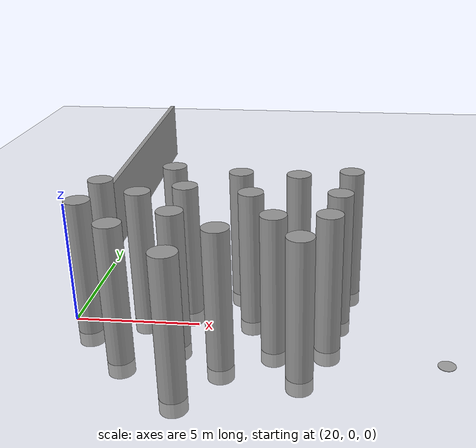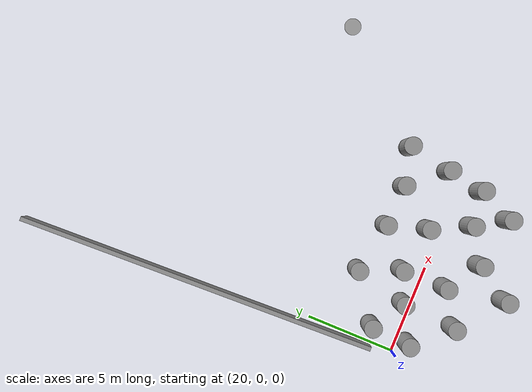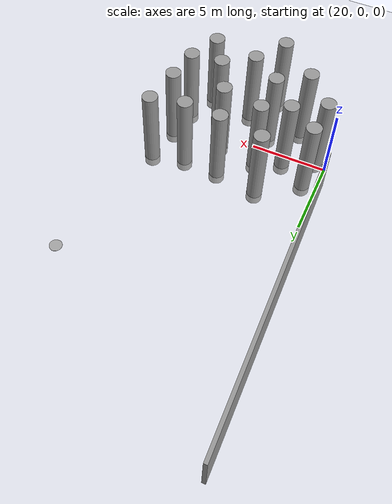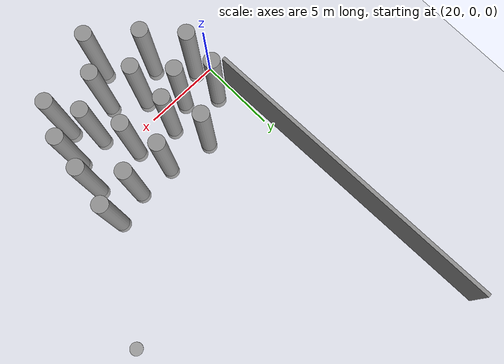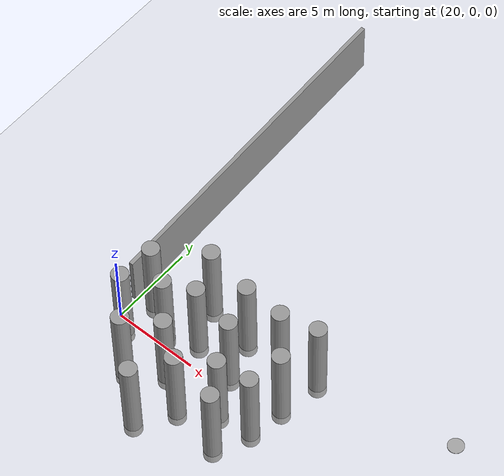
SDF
<sdf version="1.6">
 <world name="default">
  <plugin name="disable_physics" filename="libdisable_physics.so"/>
  <light name="sun" type="directional">
   <cast_shadows>0</cast_shadows>
   <pose>0 0 10 0 -0 0</pose>
   <diffuse>0.8 0.8 0.8 1</diffuse>
   <specular>0.2 0.2 0.2 1</specular>
   <attenuation>
    <range>1000</range>
    <constant>0.9</constant>
    <linear>0.01</linear>
    <quadratic>0.001</quadratic>
   </attenuation>
   <direction>-0.5 0.1 -0.9</direction>
  </light>
  <model name="ground_plane">
   <static>1</static>
   <link name="link">
    <collision name="collision">
     <geometry><plane><normal>0 0 1</normal><size>200 200</size></plane></geometry>
     <surface><friction><ode><mu>100</mu><mu2>50</mu2></ode></friction></surface>
    </collision>
    <visual name="visual">
     <cast_shadows>0</cast_shadows>
     <geometry><plane><normal>0 0 1</normal><size>200 200</size></plane></geometry>
     <material>
      <script><uri>file://media/materials/scripts/gazebo.material</uri><name>Gazebo/Grey</name></script>
     </material>
    </visual>
    <gravity>0</gravity>
   </link>
  </model>
  <physics name="default_physics" default="0" type="ode">
   <max_step_size>0.001</max_step_size>
   <real_time_factor>1</real_time_factor>
   <real_time_update_rate>1000</real_time_update_rate>
  </physics>
  <scene><ambient>0.4 0.4 0.4 1</ambient><background>0.7 0.7 0.7 1</background><shadows>0</shadows></scene>
  <spherical_coordinates>
   <surface_model>EARTH_WGS84</surface_model>
   <latitude_deg>0</latitude_deg>
   <longitude_deg>0</longitude_deg>
   <elevation>0</elevation>
   <heading_deg>0</heading_deg>
  </spherical_coordinates>
  <gravity>0 0 0</gravity>
  <magnetic_field>6e-06 2.3e-05 -4.2e-05</magnetic_field>
  <atmosphere type="adiabatic"/>
  <model name="unit_cylinder_0">
   <static>1</static>
   <pose>36.5123 8.86063 -7.43476 0 -0 0</pose>
   <link name="link">
    <inertial>
     <mass>1</mass>
     <inertia><ixx>0.145833</ixx><ixy>0</ixy><ixz>0</ixz><iyy>0.145833</iyy><iyz>0</iyz><izz>0.125</izz></inertia>
    </inertial>
    <collision name="collision">
     <geometry><cylinder><radius>0.5</radius><length>0.027471</length></cylinder></geometry>
     <surface><contact><collide_without_contact>1</collide_without_contact></contact></surface>
    </collision>
    <visual name="visual">
     <geometry><cylinder><radius>0.5</radius><length>0.027471</length></cylinder></geometry>
     <material>
      <script><name>Gazebo/Grey</name><uri>file://media/materials/scripts/gazebo.material</uri></script>
     </material>
    </visual>
    <gravity>0</gravity>
   </link>
  </model>
  <model name="unit_cylinder_0_clone_14_clone">
   <static>1</static>
   <pose>27.0713 0.834003 2.40172 0 -0 0.001073</pose>
   <link name="link">
    <inertial>
     <mass>1</mass>
     <inertia><ixx>0.145833</ixx><ixy>0</ixy><ixz>0</ixz><iyy>0.145833</iyy><iyz>0</iyz><izz>0.125</izz></inertia>
    </inertial>
    <collision name="collision">
     <geometry><cylinder><radius>0.5</radius><length>6.03342</length></cylinder></geometry>
     <surface><contact><collide_without_contact>1</collide_without_contact></contact></surface>
    </collision>
    <visual name="visual">
     <geometry><cylinder><radius>0.5</radius><length>6.03342</length></cylinder></geometry>
     <material>
      <script><name>Gazebo/Grey</name><uri>file://media/materials/scripts/gazebo.material</uri></script>
     </material>
    </visual>
    <gravity>0</gravity>
   </link>
  </model>
  <model name="unit_cylinder_0_clone_14_clone_2">
   <static>1</static>
   <pose>30.1334 -1.09809 2.40172 0 -0 0.001073</pose>
   <link name="link">
    <inertial>
     <mass>1</mass>
     <inertia><ixx>0.145833</ixx><ixy>0</ixy><ixz>0</ixz><iyy>0.145833</iyy><iyz>0</iyz><izz>0.125</izz></inertia>
    </inertial>
    <collision name="collision">
     <geometry><cylinder><radius>0.5</radius><length>6.03342</length></cylinder></geometry>
     <surface><contact><collide_without_contact>1</collide_without_contact></contact></surface>
    </collision>
    <visual name="visual">
     <geometry><cylinder><radius>0.5</radius><length>6.03342</length></cylinder></geometry>
     <material>
      <script><name>Gazebo/Grey</name><uri>file://media/materials/scripts/gazebo.material</uri></script>
     </material>
    </visual>
    <gravity>0</gravity>
   </link>
  </model>
  <model name="unit_cylinder_0_clone_14_clone_3">
   <static>1</static>
   <pose>30.8985 3.47912 2.40172 0 -0 0.001073</pose>
   <link name="link">
    <inertial>
     <mass>1</mass>
     <inertia><ixx>0.145833</ixx><ixy>0</ixy><ixz>0</ixz><iyy>0.145833</iyy><iyz>0</iyz><izz>0.125</izz></inertia>
    </inertial>
    <collision name="collision">
     <geometry><cylinder><radius>0.5</radius><length>6.03342</length></cylinder></geometry>
     <surface><contact><collide_without_contact>1</collide_without_contact></contact></surface>
    </collision>
    <visual name="visual">
     <geometry><cylinder><radius>0.5</radius><length>6.03342</length></cylinder></geometry>
     <material>
      <script><name>Gazebo/Grey</name><uri>file://media/materials/scripts/gazebo.material</uri></script>
     </material>
    </visual>
    <gravity>0</gravity>
   </link>
  </model>
  <model name="unit_cylinder_0_clone_14_clone_9">
   <static>1</static>
   <pose>26.3981 3.07535 2.40172 0 -0 0.001073</pose>
   <link name="link">
    <inertial>
     <mass>1</mass>
     <inertia><ixx>0.145833</ixx><ixy>0</ixy><ixz>0</ixz><iyy>0.145833</iyy><iyz>0</iyz><izz>0.125</izz></inertia>
    </inertial>
    <collision name="collision">
     <geometry><cylinder><radius>0.5</radius><length>6.03342</length></cylinder></geometry>
     <surface><contact><collide_without_contact>1</collide_without_contact></contact></surface>
    </collision>
    <visual name="visual">
     <geometry><cylinder><radius>0.5</radius><length>6.03342</length></cylinder></geometry>
     <material>
      <script><name>Gazebo/Grey</name><uri>file://media/materials/scripts/gazebo.material</uri></script>
     </material>
    </visual>
    <gravity>0</gravity>
   </link>
  </model>
  <model name="unit_cylinder_0_clone_14_clone_10">
   <static>1</static>
   <pose>20.9456 1.70474 2.40172 0 -0 0.001073</pose>
   <link name="link">
    <inertial>
     <mass>1</mass>
     <inertia><ixx>0.145833</ixx><ixy>0</ixy><ixz>0</ixz><iyy>0.145833</iyy><iyz>0</iyz><izz>0.125</izz></inertia>
    </inertial>
    <collision name="collision">
     <geometry><cylinder><radius>0.5</radius><length>6.03342</length></cylinder></geometry>
     <surface><contact><collide_without_contact>1</collide_without_contact></contact></surface>
    </collision>
    <visual name="visual">
     <geometry><cylinder><radius>0.5</radius><length>6.03342</length></cylinder></geometry>
     <material>
      <script><name>Gazebo/Grey</name><uri>file://media/materials/scripts/gazebo.material</uri></script>
     </material>
    </visual>
    <gravity>0</gravity>
   </link>
  </model>
  <model name="unit_cylinder_0_clone_14_clone_16">
   <static>1</static>
   <pose>28.7658 2.97418 2.40172 0 -0 0.001073</pose>
   <link name="link">
    <inertial>
     <mass>1</mass>
     <inertia><ixx>0.145833</ixx><ixy>0</ixy><ixz>0</ixz><iyy>0.145833</iyy><iyz>0</iyz><izz>0.125</izz></inertia>
    </inertial>
    <collision name="collision">
     <geometry><cylinder><radius>0.5</radius><length>6.03342</length></cylinder></geometry>
     <surface><contact><collide_without_contact>1</collide_without_contact></contact></surface>
    </collision>
    <visual name="visual">
     <geometry><cylinder><radius>0.5</radius><length>6.03342</length></cylinder></geometry>
     <material>
      <script><name>Gazebo/Grey</name><uri>file://media/materials/scripts/gazebo.material</uri></script>
     </material>
    </visual>
    <gravity>0</gravity>
   </link>
  </model>
  <model name="unit_box_0_0_clone_0_clone_clone_clone">
   <static>1</static>
   <pose>19.4333 11.5254 1.66667 -0.000226 9e-06 0.034061</pose>
   <link name="link">
    <inertial>
     <mass>1</mass>
     <inertia>
      <ixx>0.166667</ixx>
      <ixy>0</ixy>
      <ixz>0</ixz>
      <iyy>0.166667</iyy>
      <iyz>0</iyz>
      <izz>0.166667</izz>
     </inertia>
    </inertial>
    <collision name="collision">
     <geometry><box><size>0.237691 20.4927 3.33454</size></box></geometry>
     <surface><contact><collide_without_contact>1</collide_without_contact></contact></surface>
    </collision>
    <visual name="visual">
     <geometry><box><size>0.237691 20.4927 3.33454</size></box></geometry>
     <material>
      <script><name>Gazebo/Grey</name><uri>file://media/materials/scripts/gazebo.material</uri></script>
     </material>
    </visual>
    <gravity>0</gravity>
   </link>
  </model>
  <model name="unit_cylinder_0_clone_14_clone_9_clone">
   <static>1</static>
   <pose>26.3022 -2.58144 2.40172 0 -0 0.001073</pose>
   <link name="link">
    <inertial>
     <mass>1</mass>
     <inertia><ixx>0.145833</ixx><ixy>0</ixy><ixz>0</ixz><iyy>0.145833</iyy><iyz>0</iyz><izz>0.125</izz></inertia>
    </inertial>
    <collision name="collision">
     <geometry><cylinder><radius>0.5</radius><length>6.03342</length></cylinder></geometry>
     <surface><contact><collide_without_contact>1</collide_without_contact></contact></surface>
    </collision>
    <visual name="visual">
     <geometry><cylinder><radius>0.5</radius><length>6.03342</length></cylinder></geometry>
     <material>
      <script><name>Gazebo/Grey</name><uri>file://media/materials/scripts/gazebo.material</uri></script>
     </material>
    </visual>
    <gravity>0</gravity>
   </link>
  </model>
  <model name="unit_cylinder_0_clone_14_clone_9_clone_0">
   <static>1</static>
   <pose>24.994 -4.58703 2.40172 0 -0 0.001073</pose>
   <link name="link">
    <inertial>
     <mass>1</mass>
     <inertia><ixx>0.145833</ixx><ixy>0</ixy><ixz>0</ixz><iyy>0.145833</iyy><iyz>0</iyz><izz>0.125</izz></inertia>
    </inertial>
    <collision name="collision">
     <geometry><cylinder><radius>0.5</radius><length>6.03342</length></cylinder></geometry>
     <surface><contact><collide_without_contact>1</collide_without_contact></contact></surface>
    </collision>
    <visual name="visual">
     <geometry><cylinder><radius>0.5</radius><length>6.03342</length></cylinder></geometry>
     <material>
      <script><name>Gazebo/Grey</name><uri>file://media/materials/scripts/gazebo.material</uri></script>
     </material>
    </visual>
    <gravity>0</gravity>
   </link>
  </model>
  <model name="unit_cylinder_0_clone_14_clone_9_clone_1">
   <static>1</static>
   <pose>24.4264 -1.26675 2.40172 0 -0 0.001073</pose>
   <link name="link">
    <inertial>
     <mass>1</mass>
     <inertia><ixx>0.145833</ixx><ixy>0</ixy><ixz>0</ixz><iyy>0.145833</iyy><iyz>0</iyz><izz>0.125</izz></inertia>
    </inertial>
    <collision name="collision">
     <geometry><cylinder><radius>0.5</radius><length>6.03342</length></cylinder></geometry>
     <surface><contact><collide_without_contact>1</collide_without_contact></contact></surface>
    </collision>
    <visual name="visual">
     <geometry><cylinder><radius>0.5</radius><length>6.03342</length></cylinder></geometry>
     <material>
      <script><name>Gazebo/Grey</name><uri>file://media/materials/scripts/gazebo.material</uri></script>
     </material>
    </visual>
    <gravity>0</gravity>
   </link>
  </model>
  <model name="unit_cylinder_0_clone_14_clone_9_clone_2">
   <static>1</static>
   <pose>24.4374 1.31521 2.40172 0 -0 0.001073</pose>
   <link name="link">
    <inertial>
     <mass>1</mass>
     <inertia><ixx>0.145833</ixx><ixy>0</ixy><ixz>0</ixz><iyy>0.145833</iyy><iyz>0</iyz><izz>0.125</izz></inertia>
    </inertial>
    <collision name="collision">
     <geometry><cylinder><radius>0.5</radius><length>6.03342</length></cylinder></geometry>
     <surface><contact><collide_without_contact>1</collide_without_contact></contact></surface>
    </collision>
    <visual name="visual">
     <geometry><cylinder><radius>0.5</radius><length>6.03342</length></cylinder></geometry>
     <material>
      <script><name>Gazebo/Grey</name><uri>file://media/materials/scripts/gazebo.material</uri></script>
     </material>
    </visual>
    <gravity>0</gravity>
   </link>
  </model>
  <model name="unit_cylinder_0_clone_14_clone_9_clone_3">
   <static>1</static>
   <pose>22.7597 0.557976 2.40172 0 -0 0.001073</pose>
   <link name="link">
    <inertial>
     <mass>1</mass>
     <inertia><ixx>0.145833</ixx><ixy>0</ixy><ixz>0</ixz><iyy>0.145833</iyy><iyz>0</iyz><izz>0.125</izz></inertia>
    </inertial>
    <collision name="collision">
     <geometry><cylinder><radius>0.5</radius><length>6.03342</length></cylinder></geometry>
     <surface><contact><collide_without_contact>1</collide_without_contact></contact></surface>
    </collision>
    <visual name="visual">
     <geometry><cylinder><radius>0.5</radius><length>6.03342</length></cylinder></geometry>
     <material>
      <script><name>Gazebo/Grey</name><uri>file://media/materials/scripts/gazebo.material</uri></script>
     </material>
    </visual>
    <gravity>0</gravity>
   </link>
  </model>
  <model name="unit_cylinder_0_clone_14_clone_9_clone_4">
   <static>1</static>
   <pose>29.2151 -3.07408 2.40172 0 -0 0.001073</pose>
   <link name="link">
    <inertial>
     <mass>1</mass>
     <inertia><ixx>0.145833</ixx><ixy>0</ixy><ixz>0</ixz><iyy>0.145833</iyy><iyz>0</iyz><izz>0.125</izz></inertia>
    </inertial>
    <collision name="collision">
     <geometry><cylinder><radius>0.5</radius><length>6.03342</length></cylinder></geometry>
     <surface><contact><collide_without_contact>1</collide_without_contact></contact></surface>
    </collision>
    <visual name="visual">
     <geometry><cylinder><radius>0.5</radius><length>6.03342</length></cylinder></geometry>
     <material>
      <script><name>Gazebo/Grey</name><uri>file://media/materials/scripts/gazebo.material</uri></script>
     </material>
    </visual>
    <gravity>0</gravity>
   </link>
  </model>
  <model name="unit_cylinder_0_clone_14_clone_9_clone_5">
   <static>1</static>
   <pose>22.5606 -2.5261 2.40172 0 -0 0.001073</pose>
   <link name="link">
    <inertial>
     <mass>1</mass>
     <inertia><ixx>0.145833</ixx><ixy>0</ixy><ixz>0</ixz><iyy>0.145833</iyy><iyz>0</iyz><izz>0.125</izz></inertia>
    </inertial>
    <collision name="collision">
     <geometry><cylinder><radius>0.5</radius><length>6.03342</length></cylinder></geometry>
     <surface><contact><collide_without_contact>1</collide_without_contact></contact></surface>
    </collision>
    <visual name="visual">
     <geometry><cylinder><radius>0.5</radius><length>6.03342</length></cylinder></geometry>
     <material>
      <script><name>Gazebo/Grey</name><uri>file://media/materials/scripts/gazebo.material</uri></script>
     </material>
    </visual>
    <gravity>0</gravity>
   </link>
  </model>
  <model name="unit_cylinder_0_clone_14_clone_9_clone_6">
   <static>1</static>
   <pose>20.7833 -0.540059 2.40172 0 -0 0.001073</pose>
   <link name="link">
    <inertial>
     <mass>1</mass>
     <inertia><ixx>0.145833</ixx><ixy>0</ixy><ixz>0</ixz><iyy>0.145833</iyy><iyz>0</iyz><izz>0.125</izz></inertia>
    </inertial>
    <collision name="collision">
     <geometry><cylinder><radius>0.5</radius><length>6.03342</length></cylinder></geometry>
     <surface><contact><collide_without_contact>1</collide_without_contact></contact></surface>
    </collision>
    <visual name="visual">
     <geometry><cylinder><radius>0.5</radius><length>6.03342</length></cylinder></geometry>
     <material>
      <script><name>Gazebo/Grey</name><uri>file://media/materials/scripts/gazebo.material</uri></script>
     </material>
    </visual>
    <gravity>0</gravity>
   </link>
  </model>
  <model name="unit_cylinder_0_clone_14_clone_9_clone_7">
   <static>1</static>
   <pose>28.1402 -1.32401 2.40172 0 -0 0.001073</pose>
   <link name="link">
    <inertial>
     <mass>1</mass>
     <inertia><ixx>0.145833</ixx><ixy>0</ixy><ixz>0</ixz><iyy>0.145833</iyy><iyz>0</iyz><izz>0.125</izz></inertia>
    </inertial>
    <collision name="collision">
     <geometry><cylinder><radius>0.5</radius><length>6.03342</length></cylinder></geometry>
     <surface><contact><collide_without_contact>1</collide_without_contact></contact></surface>
    </collision>
    <visual name="visual">
     <geometry><cylinder><radius>0.5</radius><length>6.03342</length></cylinder></geometry>
     <material>
      <script><name>Gazebo/Grey</name><uri>file://media/materials/scripts/gazebo.material</uri></script>
     </material>
    </visual>
    <gravity>0</gravity>
   </link>
  </model>
  <model name="unit_cylinder_0_clone_14_clone_9_clone_8">
   <static>1</static>
   <pose>30.4752 1.0006 2.40172 0 -0 0.001073</pose>
   <link name="link">
    <inertial>
     <mass>1</mass>
     <inertia><ixx>0.145833</ixx><ixy>0</ixy><ixz>0</ixz><iyy>0.145833</iyy><iyz>0</iyz><izz>0.125</izz></inertia>
    </inertial>
    <collision name="collision">
     <geometry><cylinder><radius>0.5</radius><length>6.03342</length></cylinder></geometry>
     <surface><contact><collide_without_contact>1</collide_without_contact></contact></surface>
    </collision>
    <visual name="visual">
     <geometry><cylinder><radius>0.5</radius><length>6.03342</length></cylinder></geometry>
     <material>
      <script><name>Gazebo/Grey</name><uri>file://media/materials/scripts/gazebo.material</uri></script>
     </material>
    </visual>
    <gravity>0</gravity>
   </link>
  </model>
  <model name="unit_cylinder_0_clone_14_clone_9_clone_9">
   <static>1</static>
   <pose>23.5355 3.56188 2.40172 0 -0 0.001073</pose>
   <link name="link">
    <inertial>
     <mass>1</mass>
     <inertia><ixx>0.145833</ixx><ixy>0</ixy><ixz>0</ixz><iyy>0.145833</iyy><iyz>0</iyz><izz>0.125</izz></inertia>
    </inertial>
    <collision name="collision">
     <geometry><cylinder><radius>0.5</radius><length>6.03342</length></cylinder></geometry>
     <surface><contact><collide_without_contact>1</collide_without_contact></contact></surface>
    </collision>
    <visual name="visual">
     <geometry><cylinder><radius>0.5</radius><length>6.03342</length></cylinder></geometry>
     <material>
      <script><name>Gazebo/Grey</name><uri>file://media/materials/scripts/gazebo.material</uri></script>
     </material>
    </visual>
    <gravity>0</gravity>
   </link>
  </model>
 </world>
</sdf>
